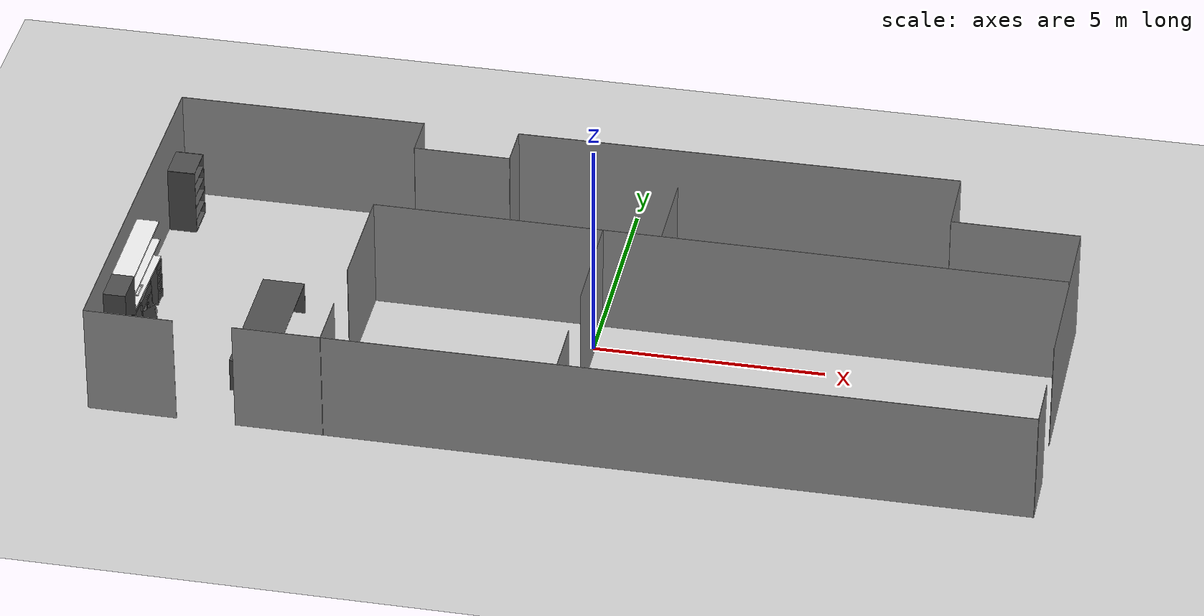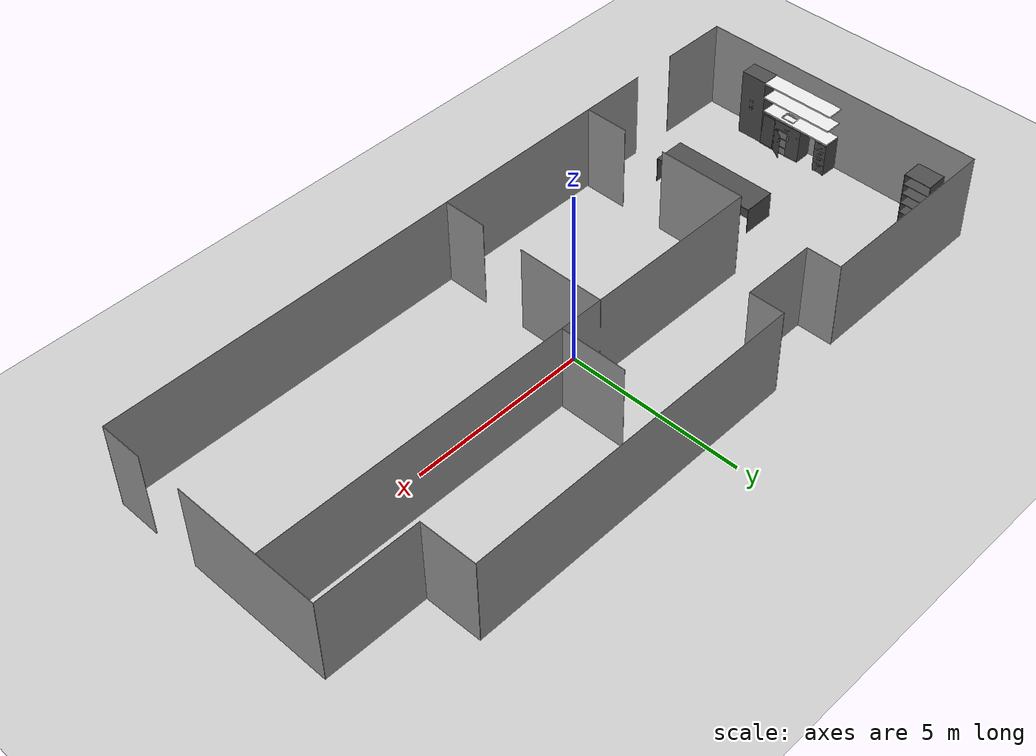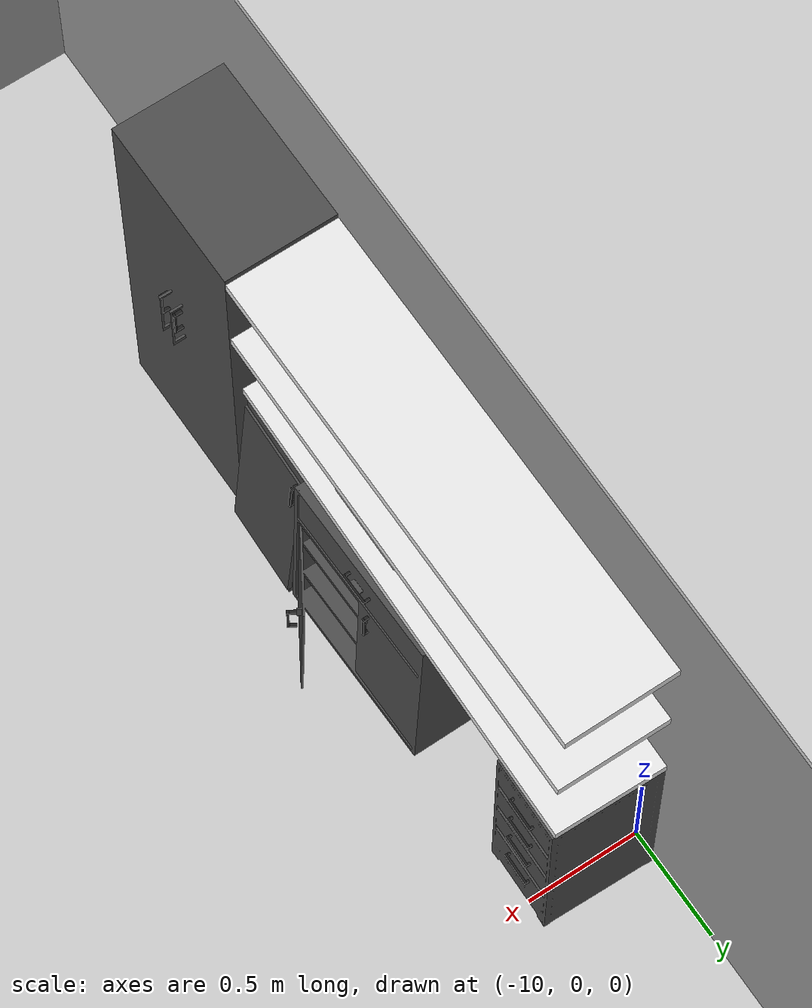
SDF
<sdf version="1.6">
 <world name="default">
  <include><uri>model://ahg_apartment</uri><name>apartment</name></include>
  <include>
   <uri>model://kitchencab</uri>
   <name>kitchencab</name>
   <pose>-9.6182 -0.781398 0.009025 0 -0 1.58311</pose>
  </include>
  <include>
   <uri>model://cabdoor</uri>
   <name>cabdoor</name>
   <pose>-9.583 -1.7733 -0.032279 -0.001454 0.092063 3.10978</pose>
  </include>
  <include>
   <uri>model://drawers</uri>
   <name>drawercab</name>
   <pose>-9.73854 -0.059237 0.01031 0 -0 1.54676</pose>
  </include>
  <include>
   <uri>model://Tall-Cabinet</uri>
   <name>tallcab</name>
   <pose>-9.71502 -2.38166 0.00057 1.57007 -1e-06 -3.14091</pose>
  </include>
  <include>
   <uri>model://shelf</uri>
   <name>shelf0</name>
   <pose>-9.76014 -0.933182 1.02645 0 0 -1.58999</pose>
  </include>
  <include>
   <uri>model://shelf</uri>
   <name>shelf1</name>
   <pose>-9.74464 -0.940107 1.93298 0 0 -1.56952</pose>
  </include>
  <include>
   <uri>model://shelf</uri>
   <name>shelf2</name>
   <pose>-9.74458 -0.944346 1.47391 0 0 -1.57628</pose>
  </include>
  <include><uri>model://sink</uri><name>sink</name><pose>-9.72683 -1.25088 1.08353 0 -0 1.56448</pose></include>
  <include><uri>model://ahg_table</uri><name>table</name><pose>-6.787863 -1.427580 0.762 0 0 0</pose></include>
  <include><uri>model://ahg_bookcase</uri><name>bookcase</name><pose>-9.670289 3.020210 0 0 0 0</pose></include>
  <include><uri>model://sun</uri></include>
  <include><uri>model://ground_plane</uri></include>
  <gravity>0 0 -9.8</gravity>
  <magnetic_field>6e-06 2.3e-05 -4.2e-05</magnetic_field>
  <atmosphere type="adiabatic"/>
  <physics name="default_physics" default="0" type="ode">
   <max_step_size>0.001</max_step_size>
   <real_time_factor>1</real_time_factor>
   <real_time_update_rate>1000</real_time_update_rate>
  </physics>
  <scene><ambient>0.4 0.4 0.4 1</ambient><background>0.7 0.7 0.7 1</background><shadows>1</shadows></scene>
  <spherical_coordinates>
   <surface_model>EARTH_WGS84</surface_model>
   <latitude_deg>0</latitude_deg>
   <longitude_deg>0</longitude_deg>
   <elevation>0</elevation>
   <heading_deg>0</heading_deg>
  </spherical_coordinates>
 </world>
</sdf>

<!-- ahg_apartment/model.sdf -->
<sdf version='1.6'>
  <model name='ahg_apartment'>
    <pose frame=''>-0.014919 0.013898 0 0 -0 0</pose>

    <!-- Wall 11 -->
    <link name='Wall_11_Bottom'>
      <collision name='Wall_11_Bottom_Collision'>
        <geometry>
          <box>
            <size>9.6682 0.01 2.5</size>
          </box>
        </geometry>
        <pose frame=''>0 0 1.25 0 -0 0</pose>
      </collision>
      <visual name='Wall_11_Bottom_Visual'>
        <pose frame=''>0 0 1.25 0 -0 0</pose>
        <geometry>
          <box>
            <size>9.6682 0.01 2.5</size>
          </box>
        </geometry>
        <material>
          <script>
            <uri>file://media/materials/scripts/gazebo.material</uri>
            <name>Gazebo/Grey</name>
          </script>
          <ambient>1 1 1 1</ambient>
        </material>
      </visual>
      <pose frame=''>2.36479 4.14145 0 0 -0 0.003242</pose>
    </link>

    <link name='Wall_11_Top'>
      <collision name='Wall_11_Top_Collision'>
        <geometry>
          <box>
            <size>9.6682 0.01 2.5</size>
          </box>
        </geometry>
        <pose frame=''>0 0 1.25 0 -0 0</pose>
      </collision>
      <visual name='Wall_11_Top_Visual'>
        <pose frame=''>0 0 1.25 0 -0 0</pose>
        <geometry>
          <box>
            <size>9.6682 0.01 2.5</size>
          </box>
        </geometry>
        <material>
          <ambient>15 71 174 1</ambient>
        </material>
      </visual>
      <pose frame=''>2.36479 4.14145 0 0 -0 0.003242</pose>
    </link>

    <!-- Wall 12 -->
    <link name='Wall_12_Bottom'>
      <collision name='Wall_12_Bottom_Collision'>
        <geometry>
          <box>
            <size>1.57865 0.01 2.5</size>
          </box>
        </geometry>
        <pose frame=''>0 0 1.25 0 -0 0</pose>
      </collision>
      <visual name='Wall_12_Bottom_Visual'>
        <pose frame=''>0 0 1.25 0 -0 0</pose>
        <geometry>
          <box>
            <size>1.57865 0.01 2.5</size>
          </box>
        </geometry>
        <material>
          <script>
            <uri>file://media/materials/scripts/gazebo.material</uri>
            <name>Gazebo/Grey</name>
          </script>
          <ambient>1 1 1 1</ambient>
        </material>
      </visual>
      <pose frame=''>7.21714 3.37282 0 0 0 -1.56019</pose>
    </link>

    <link name='Wall_12_Top'>
      <collision name='Wall_12_Top_Collision'>
        <geometry>
          <box>
            <size>1.57865 0.01 2.5</size>
          </box>
        </geometry>
        <pose frame=''>0 0 1.25 0 -0 0</pose>
      </collision>
      <visual name='Wall_12_Top_Visual'>
        <pose frame=''>0 0 1.25 0 -0 0</pose>
        <geometry>
          <box>
            <size>1.57865 0.01 2.5</size>
          </box>
        </geometry>
        <material>
          <ambient>15 71 174 1</ambient>
        </material>
      </visual>
      <pose frame=''>7.21714 3.37282 0 0 0 -1.56019</pose>
    </link>

    <!-- Wall 15 -->
    <link name='Wall_15_Bottom'>
      <collision name='Wall_15_Bottom_Collision'>
        <geometry>
          <box>
            <size>2.78102 0.01 2.5</size>
          </box>
        </geometry>
        <pose frame=''>0 0 1.25 0 -0 0</pose>
      </collision>
      <visual name='Wall_15_Bottom_Visual'>
        <pose frame=''>0 0 1.25 0 -0 0</pose>
        <geometry>
          <box>
            <size>2.78102 0.01 2.5</size>
          </box>
        </geometry>
        <material>
          <script>
            <uri>file://media/materials/scripts/gazebo.material</uri>
            <name>Gazebo/Grey</name>
          </script>
          <ambient>1 1 1 1</ambient>
        </material>
      </visual>
      <pose frame=''>8.61097 2.58077 0 0 0 -0.005604</pose>
    </link>

    <link name='Wall_15_Top'>
      <collision name='Wall_15_Top_Collision'>
        <geometry>
          <box>
            <size>2.78102 0.01 2.5</size>
          </box>
        </geometry>
        <pose frame=''>0 0 1.25 0 -0 0</pose>
      </collision>
      <visual name='Wall_15_Top_Visual'>
        <pose frame=''>0 0 1.25 0 -0 0</pose>
        <geometry>
          <box>
            <size>2.78102 0.01 2.5</size>
          </box>
        </geometry>
        <material>
          <ambient>15 71 174 1</ambient>
        </material>
      </visual>
      <pose frame=''>8.61097 2.58077 0 0 0 -0.005604</pose>
    </link>

    <!-- Wall 16 -->
    <link name='Wall_16_Bottom'>
      <collision name='Wall_16_Bottom_Collision'>
        <geometry>
          <box>
            <size>4.19662 0.01 2.5</size>
          </box>
        </geometry>
        <pose frame=''>0 0 1.25 0 -0 0</pose>
      </collision>
      <visual name='Wall_16_Bottom_Visual'>
        <pose frame=''>0 0 1.25 0 -0 0</pose>
        <geometry>
          <box>
            <size>4.19662 0.01 2.5</size>
          </box>
        </geometry>
        <material>
          <script>
            <uri>file://media/materials/scripts/gazebo.material</uri>
            <name>Gazebo/Grey</name>
          </script>
          <ambient>1 1 1 1</ambient>
        </material>
      </visual>
      <pose frame=''>9.99989 0.479714 0 0 0 -1.57325</pose>
    </link>

    <link name='Wall_16_Top'>
      <collision name='Wall_16_Top_Collision'>
        <geometry>
          <box>
            <size>4.19662 0.01 2.5</size>
          </box>
        </geometry>
        <pose frame=''>0 0 1.25 0 -0 0</pose>
      </collision>
      <visual name='Wall_16_Top_Visual'>
        <pose frame=''>0 0 1.25 0 -0 0</pose>
        <geometry>
          <box>
            <size>4.19662 0.01 2.5</size>
          </box>
        </geometry>
        <material>
          <ambient>15 71 174 1</ambient>
        </material>
      </visual>
      <pose frame=''>9.99989 0.479714 0 0 0 -1.57325</pose>
    </link>

    <!-- Wall 18 -->
    <link name='Wall_18_Bottom'>
      <collision name='Wall_18_Bottom_Collision'>
        <geometry>
          <box>
            <size>1.2318 0.01 2.5</size>
          </box>
        </geometry>
        <pose frame=''>0 0 1.25 0 -0 0</pose>
      </collision>
      <visual name='Wall_18_Bottom_Visual'>
        <pose frame=''>0 0 1.25 0 -0 0</pose>
        <geometry>
          <box>
            <size>1.2318 0.01 2.5</size>
          </box>
        </geometry>
        <material>
          <script>
            <uri>file://media/materials/scripts/gazebo.material</uri>
            <name>Gazebo/Grey</name>
          </script>
          <ambient>1 1 1 1</ambient>
        </material>
      </visual>
      <pose frame=''>10.0193 -3.51742 0 0 0 -1.57439</pose>
    </link>

    <link name='Wall_18_Top'>
      <collision name='Wall_18_Top_Collision'>
        <geometry>
          <box>
            <size>1.2318 0.01 2.5</size>
          </box>
        </geometry>
        <pose frame=''>0 0 1.25 0 -0 0</pose>
      </collision>
      <visual name='Wall_18_Top_Visual'>
        <pose frame=''>0 0 1.25 0 -0 0</pose>
        <geometry>
          <box>
            <size>1.2318 0.01 2.5</size>
          </box>
        </geometry>
        <material>
          <ambient>15 71 174 1</ambient>
        </material>
      </visual>
      <pose frame=''>10.0193 -3.51742 0 0 0 -1.57439</pose>
    </link>

    <!-- Wall 19 -->
    <link name='Wall_19_Bottom'>
      <collision name='Wall_19_Bottom_Collision'>
        <geometry>
          <box>
            <size>16.8681 0.01 2.5</size>
          </box>
        </geometry>
        <pose frame=''>0 0 1.25 0 -0 0</pose>
      </collision>
      <visual name='Wall_19_Bottom_Visual'>
        <pose frame=''>0 0 1.25 0 -0 0</pose>
        <geometry>
          <box>
            <size>16.8681 0.01 2.5</size>
          </box>
        </geometry>
        <material>
          <script>
            <uri>file://media/materials/scripts/gazebo.material</uri>
            <name>Gazebo/Grey</name>
          </script>
          <ambient>1 1 1 1</ambient>
        </material>
      </visual>
      <pose frame=''>1.58828 -4.13952 0 0 0 -3.14015</pose>
    </link>

    <link name='Wall_19_Top'>
      <collision name='Wall_19_Top_Collision'>
        <geometry>
          <box>
            <size>16.8681 0.01 2.5</size>
          </box>
        </geometry>
        <pose frame=''>0 0 1.25 0 -0 0</pose>
      </collision>
      <visual name='Wall_19_Top_Visual'>
        <pose frame=''>0 0 1.25 0 -0 0</pose>
        <geometry>
          <box>
            <size>16.8681 0.01 2.5</size>
          </box>
        </geometry>
        <material>
          <ambient>15 71 174 1</ambient>
        </material>
      </visual>
      <pose frame=''>1.58828 -4.13952 0 0 0 -3.14015</pose>
    </link>

    <!-- Wall 21 -->
    <link name='Wall_21_Bottom'>
      <collision name='Wall_21_Bottom_Collision'>
        <geometry>
          <box>
            <size>1.91841 0.01 2.5</size>
          </box>
        </geometry>
        <pose frame=''>0 0 1.25 0 -0 0</pose>
      </collision>
      <visual name='Wall_21_Bottom_Visual'>
        <pose frame=''>0 0 1.25 0 -0 0</pose>
        <geometry>
          <box>
            <size>1.91841 0.01 2.5</size>
          </box>
        </geometry>
        <material>
          <script>
            <uri>file://media/materials/scripts/gazebo.material</uri>
            <name>Gazebo/Grey</name>
          </script>
          <ambient>1 1 1 1</ambient>
        </material>
      </visual>
      <pose frame=''>-9.06728 -4.14723 0 0 -0 3.13664</pose>
    </link>

    <link name='Wall_21_Top'>
      <collision name='Wall_21_Top_Collision'>
        <geometry>
          <box>
            <size>1.91841 0.01 2.5</size>
          </box>
        </geometry>
        <pose frame=''>0 0 1.25 0 -0 0</pose>
      </collision>
      <visual name='Wall_21_Top_Visual'>
        <pose frame=''>0 0 1.25 0 -0 0</pose>
        <geometry>
          <box>
            <size>1.91841 0.01 2.5</size>
          </box>
        </geometry>
        <material>
          <ambient>15 71 174 1</ambient>
        </material>
      </visual>
      <pose frame=''>-9.06728 -4.14723 0 0 -0 3.13664</pose>
    </link>

    <!-- Wall 22 -->
    <link name='Wall_22_Bottom'>
      <collision name='Wall_22_Bottom_Collision'>
        <geometry>
          <box>
            <size>8.2785 0.01 2.5</size>
          </box>
        </geometry>
        <pose frame=''>0 0 1.25 0 -0 0</pose>
      </collision>
      <visual name='Wall_22_Bottom_Visual'>
        <pose frame=''>0 0 1.25 0 -0 0</pose>
        <geometry>
          <box>
            <size>8.2785 0.01 2.5</size>
          </box>
        </geometry>
        <material>
          <script>
            <uri>file://media/materials/scripts/gazebo.material</uri>
            <name>Gazebo/Grey</name>
          </script>
          <ambient>1 1 1 1</ambient>
        </material>
      </visual>
      <pose frame=''>-10.002 -0.008293 0 0 -0 1.56643</pose>
    </link>

    <link name='Wall_22_Top'>
      <collision name='Wall_22_Top_Collision'>
        <geometry>
          <box>
            <size>8.2785 0.01 2.5</size>
          </box>
        </geometry>
        <pose frame=''>0 0 1.25 0 -0 0</pose>
      </collision>
      <visual name='Wall_22_Top_Visual'>
        <pose frame=''>0 0 1.25 0 -0 0</pose>
        <geometry>
          <box>
            <size>8.2785 0.01 2.5</size>
          </box>
        </geometry>
        <material>
          <ambient>15 71 174 1</ambient>
        </material>
      </visual>
      <pose frame=''>-10.002 -0.008293 0 0 -0 1.56643</pose>
    </link>

    <!-- Wall 34 -->
    <link name='Wall_34_Bottom'>
      <collision name='Wall_34_Bottom_Collision'>
        <geometry>
          <box>
            <size>2.10809 0.01 2.5</size>
          </box>
        </geometry>
        <pose frame=''>0 0 1.25 0 -0 0</pose>
      </collision>
      <visual name='Wall_34_Bottom_Visual'>
        <pose frame=''>0 0 1.25 0 -0 0</pose>
        <geometry>
          <box>
            <size>2.10809 0.01 2.5</size>
          </box>
        </geometry>
        <material>
          <script>
            <uri>file://media/materials/scripts/gazebo.material</uri>
            <name>Gazebo/Grey</name>
          </script>
          <ambient>1 1 1 1</ambient>
        </material>
      </visual>
      <pose frame=''>-3.51618 3.14425 0 0 0 -0.003415</pose>
    </link>

    <link name='Wall_34_Top'>
      <collision name='Wall_34_Top_Collision'>
        <geometry>
          <box>
            <size>2.10809 0.01 2.5</size>
          </box>
        </geometry>
        <pose frame=''>0 0 1.25 0 -0 0</pose>
      </collision>
      <visual name='Wall_34_Top_Visual'>
        <pose frame=''>0 0 1.25 0 -0 0</pose>
        <geometry>
          <box>
            <size>2.10809 0.01 2.5</size>
          </box>
        </geometry>
        <material>
          <ambient>15 71 174 1</ambient>
        </material>
      </visual>
      <pose frame=''>-3.51618 3.14425 0 0 0 -0.003415</pose>
    </link>

    <!-- Wall 4 -->
    <link name='Wall_4_Bottom'>
      <collision name='Wall_4_Bottom_Collision'>
        <geometry>
          <box>
            <size>5.41613 0.01 2.5</size>
          </box>
        </geometry>
        <pose frame=''>0 0 1.25 0 -0 0</pose>
      </collision>
      <visual name='Wall_4_Bottom_Visual'>
        <pose frame=''>0 0 1.25 0 -0 0</pose>
        <geometry>
          <box>
            <size>5.41613 0.01 2.5</size>
          </box>
        </geometry>
        <material>
          <script>
            <uri>file://media/materials/scripts/gazebo.material</uri>
            <name>Gazebo/Grey</name>
          </script>
          <ambient>1 1 1 1</ambient>
        </material>
      </visual>
      <pose frame=''>-7.28234 4.12511 0 0 0 -0.0003</pose>
    </link>

    <link name='Wall_4_Top'>
      <collision name='Wall_4_Top_Collision'>
        <geometry>
          <box>
            <size>5.41613 0.01 2.5</size>
          </box>
        </geometry>
        <pose frame=''>0 0 1.25 0 -0 0</pose>
      </collision>
      <visual name='Wall_4_Top_Visual'>
        <pose frame=''>0 0 1.25 0 -0 0</pose>
        <geometry>
          <box>
            <size>5.41613 0.01 2.5</size>
          </box>
        </geometry>
        <material>
          <ambient>15 71 174 1</ambient>
        </material>
      </visual>
      <pose frame=''>-7.28234 4.12511 0 0 0 -0.0003</pose>
    </link>

    <!-- Wall 41 -->
    <link name='Wall_41_Bottom'>
      <collision name='Wall_41_Bottom_Collision'>
        <geometry>
          <box>
            <size>1.26357 0.01 2.5</size>
          </box>
        </geometry>
        <pose frame=''>0 0 1.25 0 -0 0</pose>
      </collision>
      <visual name='Wall_41_Bottom_Visual'>
        <pose frame=''>0 0 1.25 0 -0 0</pose>
        <geometry>
          <box>
            <size>1.26357 0.01 2.5</size>
          </box>
        </geometry>
        <material>
          <script>
            <uri>file://media/materials/scripts/gazebo.material</uri>
            <name>Gazebo/Grey</name>
          </script>
          <ambient>1 1 1 1</ambient>
        </material>
      </visual>
      <pose frame=''>-4.95628 -3.53036 0 0 -0 1.56863</pose>
    </link>

    <link name='Wall_41_Top'>
      <collision name='Wall_41_Top_Collision'>
        <geometry>
          <box>
            <size>1.26357 0.01 2.5</size>
          </box>
        </geometry>
        <pose frame=''>0 0 1.25 0 -0 0</pose>
      </collision>
      <visual name='Wall_41_Top_Visual'>
        <pose frame=''>0 0 1.25 0 -0 0</pose>
        <geometry>
          <box>
            <size>1.26357 0.01 2.5</size>
          </box>
        </geometry>
        <material>
          <ambient>15 71 174 1</ambient>
        </material>
      </visual>
      <pose frame=''>-4.95628 -3.53036 0 0 -0 1.56863</pose>
    </link>

    <!-- Wall 46 -->
    <link name='Wall_46_Bottom'>
      <collision name='Wall_46_Bottom_Collision'>
        <geometry>
          <box>
            <size>2.51611 0.01 2.5</size>
          </box>
        </geometry>
        <pose frame=''>0 0 1.25 0 -0 0</pose>
      </collision>
      <visual name='Wall_46_Bottom_Visual'>
        <pose frame=''>0 0 1.25 0 -0 0</pose>
        <geometry>
          <box>
            <size>2.51611 0.01 2.5</size>
          </box>
        </geometry>
        <material>
          <script>
            <uri>file://media/materials/scripts/gazebo.material</uri>
            <name>Gazebo/Grey</name>
          </script>
          <ambient>1 1 1 1</ambient>
        </material>
      </visual>
      <pose frame=''>-4.95391 -0.395397 0 0 -0 1.57146</pose>
    </link>

    <link name='Wall_46_Top'>
      <collision name='Wall_46_Top_Collision'>
        <geometry>
          <box>
            <size>2.51611 0.01 2.5</size>
          </box>
        </geometry>
        <pose frame=''>0 0 1.25 0 -0 0</pose>
      </collision>
      <visual name='Wall_46_Top_Visual'>
        <pose frame=''>0 0 1.25 0 -0 0</pose>
        <geometry>
          <box>
            <size>2.51611 0.01 2.5</size>
          </box>
        </geometry>
        <material>
          <ambient>15 71 174 1</ambient>
        </material>
      </visual>
      <pose frame=''>-4.95391 -0.395397 0 0 -0 1.57146</pose>
    </link>

    <!-- Wall 47 -->
    <link name='Wall_47_Bottom'>
      <collision name='Wall_47_Bottom_Collision'>
        <geometry>
          <box>
            <size>14.9335 0.01 2.5</size>
          </box>
        </geometry>
        <pose frame=''>0 0 1.25 0 -0 0</pose>
      </collision>
      <visual name='Wall_47_Bottom_Visual'>
        <pose frame=''>0 0 1.25 0 -0 0</pose>
        <geometry>
          <box>
            <size>14.9335 0.01 2.5</size>
          </box>
        </geometry>
        <material>
          <script>
            <uri>file://media/materials/scripts/gazebo.material</uri>
            <name>Gazebo/Grey</name>
          </script>
          <ambient>1 1 1 1</ambient>
        </material>
      </visual>
      <pose frame=''>2.51347 0.847509 0 0 0 -0.001348</pose>
    </link>

    <link name='Wall_47_Top'>
      <collision name='Wall_47_Top_Collision'>
        <geometry>
          <box>
            <size>14.9335 0.01 2.5</size>
          </box>
        </geometry>
        <pose frame=''>0 0 1.25 0 -0 0</pose>
      </collision>
      <visual name='Wall_47_Top_Visual'>
        <pose frame=''>0 0 1.25 0 -0 0</pose>
        <geometry>
          <box>
            <size>14.9335 0.01 2.5</size>
          </box>
        </geometry>
        <material>
          <ambient>15 71 174 1</ambient>
        </material>
      </visual>
      <pose frame=''>2.51347 0.847509 0 0 0 -0.001348</pose>
    </link>

    <!-- Wall 49 -->
    <link name='Wall_49_Bottom'>
      <collision name='Wall_49_Bottom_Collision'>
        <geometry>
          <box>
            <size>1.244 0.01 2.5</size>
          </box>
        </geometry>
        <pose frame=''>0 0 1.25 0 -0 0</pose>
      </collision>
      <visual name='Wall_49_Bottom_Visual'>
        <pose frame=''>0 0 1.25 0 -0 0</pose>
        <geometry>
          <box>
            <size>1.244 0.01 2.5</size>
          </box>
        </geometry>
        <material>
          <script>
            <uri>file://media/materials/scripts/gazebo.material</uri>
            <name>Gazebo/Grey</name>
          </script>
          <ambient>1 1 1 1</ambient>
        </material>
      </visual>
      <pose frame=''>0.039193 -3.52411 0 0 -0 1.5708</pose>
    </link>

    <link name='Wall_49_Top'>
      <collision name='Wall_49_Top_Collision'>
        <geometry>
          <box>
            <size>1.244 0.01 2.5</size>
          </box>
        </geometry>
        <pose frame=''>0 0 1.25 0 -0 0</pose>
      </collision>
      <visual name='Wall_49_Top_Visual'>
        <pose frame=''>0 0 1.25 0 -0 0</pose>
        <geometry>
          <box>
            <size>1.244 0.01 2.5</size>
          </box>
        </geometry>
        <material>
          <ambient>15 71 174 1</ambient>
        </material>
      </visual>
      <pose frame=''>0.039193 -3.52411 0 0 -0 1.5708</pose>
    </link>

    <!-- Wall 61 -->
    <link name='Wall_61_Bottom'>
      <collision name='Wall_61_Bottom_Collision'>
        <geometry>
          <box>
            <size>1.86489 0.01 2.5</size>
          </box>
        </geometry>
        <pose frame=''>0 0 1.25 0 -0 0</pose>
      </collision>
      <visual name='Wall_61_Bottom_Visual'>
        <pose frame=''>0 0 1.25 0 -0 0</pose>
        <geometry>
          <box>
            <size>1.86489 0.01 2.5</size>
          </box>
        </geometry>
        <material>
          <script>
            <uri>file://media/materials/scripts/gazebo.material</uri>
            <name>Gazebo/Grey</name>
          </script>
          <ambient>1 1 1 1</ambient>
        </material>
      </visual>
      <pose frame=''>1.29442 1.79697 0 0 -0 1.57049</pose>
    </link>

    <link name='Wall_61_Top'>
      <collision name='Wall_61_Top_Collision'>
        <geometry>
          <box>
            <size>1.86489 0.01 2.5</size>
          </box>
        </geometry>
        <pose frame=''>0 0 1.25 0 -0 0</pose>
      </collision>
      <visual name='Wall_61_Top_Visual'>
        <pose frame=''>0 0 1.25 0 -0 0</pose>
        <geometry>
          <box>
            <size>1.86489 0.01 2.5</size>
          </box>
        </geometry>
        <material>
          <ambient>15 71 174 1</ambient>
        </material>
      </visual>
      <pose frame=''>1.29442 1.79697 0 0 -0 1.57049</pose>
    </link>

    <!-- Wall 65 -->
    <link name='Wall_65_Bottom'>
      <collision name='Wall_65_Bottom_Collision'>
        <geometry>
          <box>
            <size>0.998401 0.01 2.5</size>
          </box>
        </geometry>
        <pose frame=''>0 0 1.25 0 -0 0</pose>
      </collision>
      <visual name='Wall_65_Bottom_Visual'>
        <pose frame=''>0 0 1.25 0 -0 0</pose>
        <geometry>
          <box>
            <size>0.998401 0.01 2.5</size>
          </box>
        </geometry>
        <material>
          <script>
            <uri>file://media/materials/scripts/gazebo.material</uri>
            <name>Gazebo/Grey</name>
          </script>
          <ambient>1 1 1 1</ambient>
        </material>
      </visual>
      <pose frame=''>-2.4641 3.63485 0 0 -0 1.57118</pose>
    </link>

    <link name='Wall_65_Top'>
      <collision name='Wall_65_Top_Collision'>
        <geometry>
          <box>
            <size>0.998401 0.01 2.5</size>
          </box>
        </geometry>
        <pose frame=''>0 0 1.25 0 -0 0</pose>
      </collision>
      <visual name='Wall_65_Top_Visual'>
        <pose frame=''>0 0 1.25 0 -0 0</pose>
        <geometry>
          <box>
            <size>0.998401 0.01 2.5</size>
          </box>
        </geometry>
        <material>
          <ambient>15 71 174 1</ambient>
        </material>
      </visual>
      <pose frame=''>-2.4641 3.63485 0 0 -0 1.57118</pose>
    </link>

    <!-- Wall 69 -->
    <link name='Wall_69_Bottom'>
      <collision name='Wall_69_Bottom_Collision'>
        <geometry>
          <box>
            <size>0.993206 0.01 2.5</size>
          </box>
        </geometry>
        <pose frame=''>0 0 1.25 0 -0 0</pose>
      </collision>
      <visual name='Wall_69_Bottom_Visual'>
        <pose frame=''>0 0 1.25 0 -0 0</pose>
        <geometry>
          <box>
            <size>0.993206 0.01 2.5</size>
          </box>
        </geometry>
        <material>
          <script>
            <uri>file://media/materials/scripts/gazebo.material</uri>
            <name>Gazebo/Grey</name>
          </script>
          <ambient>1 1 1 1</ambient>
        </material>
      </visual>
      <pose frame=''>-4.56795 3.63943 0 0 -0 1.57351</pose>
    </link>

    <link name='Wall_69_Top'>
      <collision name='Wall_69_Top_Collision'>
        <geometry>
          <box>
            <size>0.993206 0.01 2.5</size>
          </box>
        </geometry>
        <pose frame=''>0 0 1.25 0 -0 0</pose>
      </collision>
      <visual name='Wall_69_Top_Visual'>
        <pose frame=''>0 0 1.25 0 -0 0</pose>
        <geometry>
          <box>
            <size>0.993206 0.01 2.5</size>
          </box>
        </geometry>
        <material>
          <ambient>15 71 174 1</ambient>
        </material>
      </visual>
      <pose frame=''>-4.56795 3.63943 0 0 -0 1.57351</pose>
    </link>

    <!-- Wall 71 -->
    <link name='Wall_71_Bottom'>
      <collision name='Wall_71_Bottom_Collision'>
        <geometry>
          <box>
            <size>2.51204 0.01 2.5</size>
          </box>
        </geometry>
        <pose frame=''>0 0 1.25 0 -0 0</pose>
      </collision>
      <visual name='Wall_71_Bottom_Visual'>
        <pose frame=''>0 0 1.25 0 -0 0</pose>
        <geometry>
          <box>
            <size>2.51204 0.01 2.5</size>
          </box>
        </geometry>
        <material>
          <script>
            <uri>file://media/materials/scripts/gazebo.material</uri>
            <name>Gazebo/Grey</name>
          </script>
          <ambient>1 1 1 1</ambient>
        </material>
      </visual>
      <pose frame=''>0.034149 -0.396524 0 0 0 -1.56821</pose>
    </link>

    <link name='Wall_71_Top'>
      <collision name='Wall_71_Top_Collision'>
        <geometry>
          <box>
            <size>2.51204 0.01 2.5</size>
          </box>
        </geometry>
        <pose frame=''>0 0 1.25 0 -0 0</pose>
      </collision>
      <visual name='Wall_71_Top_Visual'>
        <pose frame=''>0 0 1.25 0 -0 0</pose>
        <geometry>
          <box>
            <size>2.51204 0.01 2.5</size>
          </box>
        </geometry>
        <material>
          <ambient>15 71 174 1</ambient>
        </material>
      </visual>
      <pose frame=''>0.034149 -0.396524 0 0 0 -1.56821</pose>
    </link>

    <static>1</static>
  </model>
</sdf>

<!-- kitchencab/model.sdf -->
<sdf version='1.6'>
<model name='kitchencab'>
      <link name='link_1'>
        <pose frame=''>5e-06 0 -0 1.70225 0.001141 0.005671</pose>
        <visual name='visual'>
          <pose frame=''>0 0 0 -0.165796 -0 0</pose>
          <geometry>
            <mesh>
              <uri>model://kitchencab/meshes/kitchencab.dae</uri>
              <scale>0.5 0.5 0.5</scale>
            </mesh>
          </geometry>
          <material>
            <lighting>1</lighting>
            <script>
              <name>Gazebo/DarkGrey</name>
              <uri>file://media/materials/scripts/gazebo.material</uri>
            </script>
            <shader type='pixel'/>
	    <emissive>0.05 0.05 0.05 1</emissive>
          </material>
          <transparency>0</transparency>
          <cast_shadows>1</cast_shadows>
        </visual>
        <collision name='collision'>
          <laser_retro>0</laser_retro>
          <max_contacts>10</max_contacts>
          <pose frame=''>0 0 0 -0.165796 -0 0</pose>
          <geometry>
            <mesh>
              <uri>model://kitchencab/meshes/kitchencab.dae</uri>
              <scale>0.5 0.5 0.5</scale>
            </mesh>
          </geometry>
        </collision>
      </link>
      <static>1</static>
      <allow_auto_disable>1</allow_auto_disable>
      <pose frame=''>3.86158 0.104805 0.059126 0 -0 0</pose>
      <include>
	<name>DoorHandle1</name>
	<uri>model://DoorHandle</uri>
	<pose>-0.37 -0.13 0.85 -1.57 0 -1.57</pose>
      </include>
      <joint name="handle_top_joint" type="fixed">
	<child>DoorHandle1::link_2</child>
	<parent>link_1</parent>
      </joint>
     <include>
	<name>DoorHandle2</name>
	<uri>model://DoorHandle</uri>
	<pose>-0.31 -0.13 0.6 0 0 -1.57</pose>
      </include>
      <joint name="handle_middle_joint" type="fixed">
	<child>DoorHandle2::link_2</child>
	<parent>link_1</parent>
      </joint>
     <include>
	<name>DoorHandle3</name>
	<uri>model://DoorHandle</uri>
	<pose>-0.49 -0.35 0.61 0 0 -2.14</pose>
      </include>
      <joint name="handle_middle_joint" type="fixed">
	<child>DoorHandle3::link_2</child>
	<parent>link_1</parent>
      </joint>
    </model>
</sdf>

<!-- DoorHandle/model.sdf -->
<sdf version='1.6'>
  <model name='DoorHandle'>
    <link name='link_2'>
      <pose frame=''>0.013333 0 -0 0 -0 0</pose>
      <visual name='visual'>
        <pose frame=''>0 0 0 0 -0 0</pose>
        <geometry>
          <box>
            <size>0.01 0.015 0.14</size>
          </box>
        </geometry>
        <material>
          <lighting>1</lighting>
          <script>
            <name>Gazebo/Black</name>
            <uri>file://media/materials/scripts/gazebo.material</uri>
          </script>
          <shader type='pixel'>
            <normal_map>__default__</normal_map>
          </shader>
	  <ambient>0 0 0 1</ambient>
	  <specular>0 0 0 1</specular>
	  <diffuse>0 0 0 1</diffuse>
	  <emissive>0 0 0 1</emissive>
        </material>
        <transparency>0</transparency>
        <cast_shadows>1</cast_shadows>
      </visual>
      <collision name='collision'>
        <laser_retro>0</laser_retro>
        <max_contacts>10</max_contacts>
        <pose frame=''>0 0 0 0 -0 0</pose>
        <geometry>
          <box>
            <size>0.01 0.015 0.14</size>
          </box>
        </geometry>
      </collision>
    </link>
    <link name='link_4'>
      <pose frame=''>-0.006667 0 -0.065 0 -0 0</pose>
      <visual name='visual'>
        <pose frame=''>0 0 0 0 -0 0</pose>
        <geometry>
          <box>
            <size>0.03 0.015 0.01</size>
          </box>
        </geometry>
        <material>
          <lighting>1</lighting>
          <script>
            <name>Gazebo/Black</name>
            <uri>file://media/materials/scripts/gazebo.material</uri>
          </script>
          <shader type='pixel'>
            <normal_map>__default__</normal_map>
          </shader>
	  <ambient>0 0 0 1</ambient>
	  <specular>0 0 0 1</specular>
	  <diffuse>0 0 0 1</diffuse>
	  <emissive>0 0 0 1</emissive>
        </material>
        <transparency>0</transparency>
        <cast_shadows>1</cast_shadows>
      </visual>
      <collision name='collision'>
        <laser_retro>0</laser_retro>
        <max_contacts>10</max_contacts>
        <pose frame=''>0 0 0 0 -0 0</pose>
        <geometry>
          <box>
            <size>0.03 0.015 0.01</size>
          </box>
        </geometry>
      </collision>
    </link>
    <link name='link_5'>
      <pose frame=''>-0.006667 0 0.065001 0 -0 0</pose>
      <visual name='visual'>
        <pose frame=''>0 0 0 0 -0 0</pose>
        <geometry>
          <box>
            <size>0.03 0.015 0.01</size>
          </box>
        </geometry>
        <material>
          <lighting>1</lighting>
          <script>
            <name>Gazebo/Black</name>
            <uri>file://media/materials/scripts/gazebo.material</uri>
          </script>
	  <ambient>0 0 0 1</ambient>
	  <specular>0 0 0 1</specular>
	  <diffuse>0 0 0 1</diffuse>
	  <emissive>0 0 0 1</emissive>
          <shader type='pixel'>
            <normal_map>__default__</normal_map>
          </shader>
        </material>
        <transparency>0</transparency>
        <cast_shadows>1</cast_shadows>
      </visual>
      <collision name='collision'>
        <laser_retro>0</laser_retro>
        <max_contacts>10</max_contacts>
        <pose frame=''>0 0 0 0 -0 0</pose>
        <geometry>
          <box>
            <size>0.03 0.015 0.01</size>
          </box>
        </geometry>
      </collision>
    </link>
    <joint name='link_2_JOINT_2' type='fixed'>
      <parent>link_2</parent>
      <child>link_4</child>
      <pose frame=''>0 0 0 0 -0 0</pose>
    </joint>
    <joint name='link_5_JOINT_1' type='fixed'>
      <parent>link_5</parent>
      <child>link_2</child>
      <pose frame=''>0 0 0 0 -0 0</pose>
    </joint>
    <static>1</static>
    <allow_auto_disable>1</allow_auto_disable>
  </model>
</sdf>

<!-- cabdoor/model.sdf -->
<sdf version='1.6'>
    <model name='cabdoor'>
      <link name='dummy_link'>
        <pose frame=''>0 0 0 0 -0 0</pose>
        <collision name='dummy_link_collision'>
          <pose frame=''>0 0 0 0 -0 0</pose>
          <geometry>
            <box>
              <size>0 0 0</size>
            </box>
          </geometry>
          <max_contacts>10</max_contacts>
        </collision>
        <collision name='dummy_link_fixed_joint_lump__cabinet_structure_collision_1'>
          <pose frame=''>0 0 0.53 0 -0 0</pose>
          <geometry>
            <box>
              <size>0.28 0.4 0.97</size>
            </box>
          </geometry>
          <max_contacts>10</max_contacts>
        </collision>
        <collision name='dummy_link_fixed_joint_lump__cabinet_door_collision_2'>
          <pose frame=''>-0.14 0 0.52 0 -0 0</pose>
          <geometry>
            <box>
              <size>0.02 0.4 0.89</size>
            </box>
          </geometry>
          <max_contacts>10</max_contacts>
        </collision>
        <collision name='dummy_link_fixed_joint_lump__knob1_link_collision_3'>
          <pose frame=''>-0.155 -0.1825 0.95 0 -0 0</pose>
          <geometry>
            <box>
              <size>0.03 0.015 0.01</size>
            </box>
          </geometry>
          <max_contacts>10</max_contacts>
        </collision>
        <collision name='dummy_link_fixed_joint_lump__knob3_link_collision_4'>
          <pose frame=''>-0.175 -0.1825 0.88 0 -0 0</pose>
          <geometry>
            <box>
              <size>0.01 0.015 0.14</size>
            </box>
          </geometry>
          <max_contacts>10</max_contacts>
        </collision>
        <collision name='dummy_link_fixed_joint_lump__knob2_link_collision_5'>
          <pose frame=''>-0.155 -0.1825 0.82 0 -0 0</pose>
          <geometry>
            <box>
              <size>0.03 0.015 0.01</size>
            </box>
          </geometry>
          <max_contacts>10</max_contacts>
        </collision>
        <visual name='dummy_link_visual'>
          <pose frame=''>0 0 0 0 -0 0</pose>
          <geometry>
            <box>
              <size>0 0 0</size>
            </box>
          </geometry>
        </visual>
        <visual name='dummy_link_fixed_joint_lump__cabinet_structure_visual_1'>
          <pose frame=''>0 0 0.53 0 -0 0</pose>
          <geometry>
            <box>
              <size>0.28 0.4 0.97</size>
            </box>
          </geometry>
          <material>
            <script>
              <name>Gazebo/DarkGrey</name>
              <uri>file://media/materials/scripts/gazebo.material</uri>
            </script>
            <emissive>0.05 0.05 0.05 1</emissive>
          </material>
        </visual>
        <visual name='dummy_link_fixed_joint_lump__cabinet_door_visual_2'>
          <pose frame=''>-0.14 0 0.52 0 -0 0</pose>
          <geometry>
            <box>
              <size>0.02 0.4 0.89</size>
            </box>
          </geometry>
          <material>
            <script>
              <name>Gazebo/DarkGrey</name>
              <uri>file://media/materials/scripts/gazebo.material</uri>
            </script>
            <emissive>0.05 0.05 0.05 1</emissive>
          </material>
        </visual>
        <visual name='dummy_link_fixed_joint_lump__knob1_link_visual_3'>
          <pose frame=''>-0.155 -0.1825 0.95 0 -0 0</pose>
          <geometry>
            <box>
              <size>0.03 0.015 0.01</size>
            </box>
          </geometry>
          <material>
            <script>
              <name>Gazebo/Black</name>
              <uri>file://media/materials/scripts/gazebo.material</uri>
            </script>
          </material>
        </visual>
        <visual name='dummy_link_fixed_joint_lump__knob3_link_visual_4'>
          <pose frame=''>-0.175 -0.1825 0.88 0 -0 0</pose>
          <geometry>
            <box>
              <size>0.01 0.015 0.14</size>
            </box>
          </geometry>
          <material>
            <script>
              <name>Gazebo/Black</name>
              <uri>file://media/materials/scripts/gazebo.material</uri>
            </script>
          </material>
        </visual>
        <visual name='dummy_link_fixed_joint_lump__knob2_link_visual_5'>
          <pose frame=''>-0.155 -0.1825 0.82 0 -0 0</pose>
          <geometry>
            <box>
              <size>0.03 0.015 0.01</size>
            </box>
          </geometry>
          <material>
            <script>
              <name>Gazebo/Black</name>
              <uri>file://media/materials/scripts/gazebo.material</uri>
            </script>
          </material>
        </visual>
        <self_collide>0</self_collide>
        <enable_wind>0</enable_wind>
        <kinematic>0</kinematic>
      </link>
      <static>1</static>
      <allow_auto_disable>1</allow_auto_disable>
      <pose frame=''>0 0 1 0 -0 0</pose>
    </model>
</sdf>

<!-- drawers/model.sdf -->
<sdf version='1.6'>
  <model name='drawers'>
    <link name='link_0'>
      <pose frame=''>4e-06 5e-06 0 1.57 0 0</pose>
      <visual name='visual'>
        <pose frame=''>0 0 0 0 -0 0</pose>
        <geometry>
          <mesh>
            <uri>model://drawers/meshes/drawers.dae</uri>
            <scale>0.4 0.925 0.75</scale>
          </mesh>
        </geometry>
        <material>
          <lighting>1</lighting>
          <script>
            <name>Gazebo/DarkGrey</name>
            <uri>file://media/materials/scripts/gazebo.material</uri>
          </script>
          <emissive>0.06 0.06 0.06 1</emissive>
          <shader type='pixel'/>
        </material>
        <transparency>0</transparency>
        <cast_shadows>1</cast_shadows>
      </visual>
      <collision name='collision'>
        <laser_retro>0</laser_retro>
        <max_contacts>10</max_contacts>
        <pose frame=''>0 0 0 0 -0 0</pose>
        <geometry>
          <mesh>
            <uri>model://drawers/meshes/drawers.dae</uri>
            <scale>0.4 0.925 0.75</scale>
          </mesh>
        </geometry>
      </collision>
    </link>
    <static>1</static>
    <allow_auto_disable>1</allow_auto_disable>
    <include>
      <name>DoorHandle1</name>
      <uri>model://DoorHandle</uri>
      <pose>0 -0.25 0.85 -1.57 0 -1.57</pose>
    </include>
    <joint name="handle_top_joint" type="fixed">
      <child>DoorHandle1::link_2</child>
      <parent>link_1</parent>
    </joint>
    <include>
      <name>DoorHandle2</name>
      <uri>model://DoorHandle</uri>
      <pose>0 -0.25 0.65 -1.57 0 -1.57</pose>
    </include>
    <joint name="handle_top_joint" type="fixed">
      <child>DoorHandle2::link_2</child>
      <parent>link_1</parent>
    </joint>
    <include>
      <name>DoorHandle3</name>
      <uri>model://DoorHandle</uri>
      <pose>0 -0.25 0.45 -1.57 0 -1.57</pose>
    </include>
    <joint name="handle_top_joint" type="fixed">
      <child>DoorHandle3::link_2</child>
      <parent>link_1</parent>
    </joint>
    <include>
      <name>DoorHandle4</name>
      <uri>model://DoorHandle</uri>
      <pose>0 -0.25 0.25 -1.57 0 -1.57</pose>
    </include>
    <joint name="handle_top_joint" type="fixed">
      <child>DoorHandle4::link_2</child>
      <parent>link_1</parent>
    </joint>
  </model>
</sdf>

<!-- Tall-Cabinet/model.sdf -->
<sdf version='1.6'>
  <model name='Tall-Cabinet'>
    <link name='link_0'>
      <visual name='visual'>
        <pose frame=''>0 0 0 0 -0 0</pose>
        <geometry>
          <mesh>
            <uri>model://Tall-Cabinet/meshes/3d-model.obj</uri>
            <scale>0.0243 0.025 0.0265</scale>
          </mesh>
        </geometry>
        <material>
          <lighting>1</lighting>
          <script>
	    <name>Gazebo/DarkGrey</name>
            <uri>file://media/materials/scripts/gazebo.material</uri>
          </script>
	  <emissive>0.05 0.05 0.05 1</emissive>
        </material>
        <transparency>0</transparency>
        <cast_shadows>1</cast_shadows>
      </visual>
      <collision name='collision'>
        <laser_retro>0</laser_retro>
        <max_contacts>10</max_contacts>
        <pose frame=''>0 0 0 0 -0 0</pose>
        <geometry>
          <mesh>
            <uri>>model://Tall-Cabinet/meshes/3d-model.obj</uri>
            <scale>0.0243 0.025 0.0265</scale>
          </mesh>
        </geometry>
      </collision>
    </link>
    <static>1</static>
    <allow_auto_disable>1</allow_auto_disable>
    <include>
	<name>DoorHandle1</name>
	<uri>model://DoorHandle</uri>
	<size>1 1 1</size>
	<pose>-0.24 1.1 0.034 1.57 0 3.14</pose>
      </include>
      <joint name="handle_top_joint" type="fixed">
	<child>DoorHandle1::link_2</child>
	<parent>link_1</parent>
      </joint>
     <include>
	<name>DoorHandle2</name>
	<uri>model://DoorHandle</uri>
	<pose>-0.24 1.1 -0.061 1.57 0 3.14</pose>
      </include>
      <joint name="handle_middle_joint" type="fixed">
	<child>DoorHandle2::link_2</child>
	<parent>link_1</parent>
      </joint>
  </model>
</sdf>

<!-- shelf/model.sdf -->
<sdf version='1.6'>
  <model name='Shelf'>
      <link name='link_0'>
        <pose frame=''>0 -0 0 0 -0 0</pose>
        <gravity>1</gravity>
        <self_collide>0</self_collide>
        <kinematic>0</kinematic>
        <enable_wind>0</enable_wind>
        <visual name='visual'>
          <pose frame=''>0 0 0 0 -0 0</pose>
          <geometry>
            <box>
              <size>2.1209 0.487256 0.044201</size>
            </box>
          </geometry>
          <material>
            <lighting>1</lighting>
            <script>
              <uri>file://media/materials/scripts/gazebo.material</uri>
              <name>Gazebo/White</name>
            </script>
            <shader type='pixel'>
              <normal_map>__default__</normal_map>
            </shader>
            <ambient>1 1 1 1</ambient>
            <diffuse>1 1 1 1</diffuse>
            <specular>1 1 1 1</specular>
            <emissive>0 0 0 1</emissive>
          </material>
          <transparency>0</transparency>
          <cast_shadows>1</cast_shadows>
        </visual>
        <collision name='collision'>
          <laser_retro>0</laser_retro>
          <max_contacts>10</max_contacts>
          <pose frame=''>0 0 0 0 -0 0</pose>
          <geometry>
            <box>
              <size>2.1209 0.487256 0.044202</size>
            </box>
          </geometry>
        </collision>
      </link>
      <static>1</static>
      <allow_auto_disable>1</allow_auto_disable>
      <pose frame=''>3.02635 3.83455 0.774433 0 -0 0</pose>
    </model>
</sdf>

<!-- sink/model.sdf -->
<sdf version='1.6'>
  <model name='sink'>
    <link name='link_1'>
      <visual name='visual'>
        <pose frame=''>0 0 0 0 -0 0</pose>
        <geometry>
          <mesh>
            <uri>model://sink/meshes/sink.dae</uri>
            <scale>0.5 0.5 0.5</scale>
          </mesh>
        </geometry>
 	<material>
	  <emissive>0.3 0.3 0.3 0.3</emissive>
	</material>
      <transparency>0</transparency>
      </visual>
      <collision name='collision'>
        <pose frame=''>0 0 0 0 -0 0</pose>
        <geometry>
          <mesh>
            <uri>model://sink/meshes/sink.dae</uri>
            <scale>0.5 0.5 0.5</scale>
          </mesh>
        </geometry>
      </collision>
    </link>
    <static>1</static>
    <allow_auto_disable>1</allow_auto_disable>
  </model>
</sdf>

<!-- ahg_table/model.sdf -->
<sdf version='1.6'>
  <model name='ahg_table'>
    <static>1</static>
    <link name='link'>
      <pose frame=''>0 0 0 0 -0 0</pose>
      <gravity>1</gravity>
      <visual name='visual'>
        <pose frame=''>0 0 0 0 -0 0</pose>
        <geometry>
          <box>
            <size>0.9144 3.048 0.0125</size>
          </box>
        </geometry>
        <material>
          <lighting>1</lighting>
            <script>
              <name>Gazebo/DarkGrey</name>
              <uri>file://media/materials/scripts/gazebo.material</uri>
            </script>
            <shader type='pixel'/>
	    <emissive>0.05 0.05 0.05 1</emissive>
        </material>
        <transparency>0</transparency>
        <cast_shadows>1</cast_shadows>
      </visual>

      <visual name='right_leg_visual'>
        <pose frame=''>0 1.524 -0.381 0 -0 0</pose>
        <geometry>
          <box>
            <size>0.9144 0.0125 0.762</size>
          </box>
        </geometry>
        <material>
          <lighting>1</lighting>
             <script>
              <name>Gazebo/DarkGrey</name>
              <uri>file://media/materials/scripts/gazebo.material</uri>
            </script>
            <shader type='pixel'/>
	    <emissive>0.05 0.05 0.05 1</emissive>
        </material>
        <transparency>0</transparency>
        <cast_shadows>1</cast_shadows>
      </visual>

      <visual name='left_leg_visual'>
        <pose frame=''>0 -1.524 -0.381 0 -0 0</pose>
        <geometry>
          <box>
            <size>0.9144 0.0125 0.762</size>
          </box>
        </geometry>
        <material>
          <lighting>1</lighting>
            <script>
              <name>Gazebo/DarkGrey</name>
              <uri>file://media/materials/scripts/gazebo.material</uri>
            </script>
            <shader type='pixel'/>
	    <emissive>0.05 0.05 0.05 1</emissive>
        </material>
        <transparency>0</transparency>
        <cast_shadows>1</cast_shadows>
      </visual>

      <visual name='middle_visual'>
        <pose frame=''>0 0 -0.37475 0 -0 0</pose>
        <geometry>
          <box>
            <size>0.0125 3.023 0.7495</size>
          </box>
        </geometry>
        <material>
          <lighting>1</lighting>
            <script>
              <name>Gazebo/DarkGrey</name>
              <uri>file://media/materials/scripts/gazebo.material</uri>
            </script>
            <shader type='pixel'/>
	    <emissive>0.05 0.05 0.05 1</emissive>
        </material>
        <transparency>0</transparency>
        <cast_shadows>1</cast_shadows>
      </visual>

      <collision name='right_leg'>
        <laser_retro>0</laser_retro>
        <max_contacts>10</max_contacts>
        <pose frame=''>0 1.524 -0.381 0 -0 0</pose>
        <geometry>
          <box>
            <size>0.9144 0.0125 0.762</size>
          </box>
        </geometry>
      </collision>

      <collision name='left_leg'>
        <laser_retro>0</laser_retro>
        <max_contacts>10</max_contacts>
        <pose frame=''>0 -1.524 -0.381 0 -0 0</pose>
        <geometry>
          <box>
            <size>0.9144 0.0125 0.762</size>
          </box>
        </geometry>
      </collision>

      <collision name='middle'>
        <laser_retro>0</laser_retro>
        <max_contacts>10</max_contacts>
        <pose frame=''>0 0 -0.37475 0 -0 0</pose>
        <geometry>
          <box>
            <size>0.0125 3.023 0.7495</size>
          </box>
        </geometry>
      </collision>
    </link>
    <allow_auto_disable>1</allow_auto_disable>
  </model>
</sdf>

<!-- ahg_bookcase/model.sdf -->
<sdf version='1.6'>
  <model name='ahg_bookcase'>
    <static>1</static>
    <link name='link'>
      <pose frame=''>-0 0 0.009525 0 -0 0</pose>
      <gravity>1</gravity>

      <visual name='bottom_shelf_visual'>
        <pose frame=''>0 0 0.009525 0 -0 0</pose>
        <geometry>
          <box>
            <size>0.6096 0.762 0.0381</size>
          </box>
        </geometry>
        <material>
          <lighting>1</lighting>
            <script>
              <name>Gazebo/DarkGrey</name>
              <uri>file://media/materials/scripts/gazebo.material</uri>
            </script>
            <shader type='pixel'/>
	    <emissive>0.05 0.05 0.05 1</emissive>
        </material>
        <transparency>0</transparency>
        <cast_shadows>1</cast_shadows>
      </visual>

      <visual name='shelf_2_visual'>
        <pose frame=''>0 0 0.3048 0 -0 0</pose>
        <geometry>
          <box>
            <size>0.6096 0.762 0.0125</size>
          </box>
        </geometry>
        <material>
          <lighting>1</lighting>
            <script>
              <name>Gazebo/DarkGrey</name>
              <uri>file://media/materials/scripts/gazebo.material</uri>
            </script>
            <shader type='pixel'/>
	    <emissive>0.05 0.05 0.05 1</emissive>
        </material>
        <transparency>0</transparency>
        <cast_shadows>1</cast_shadows>
      </visual>

      <visual name='shelf_4_visual'>
        <pose frame=''>0 0 0.9144 0 -0 0</pose>
        <geometry>
          <box>
            <size>0.6096 0.762 0.0125</size>
          </box>
        </geometry>
        <material>
          <lighting>1</lighting>
            <script>
              <name>Gazebo/DarkGrey</name>
              <uri>file://media/materials/scripts/gazebo.material</uri>
            </script>
            <shader type='pixel'/>
	    <emissive>0.05 0.05 0.05 1</emissive>
        </material>
        <transparency>0</transparency>
        <cast_shadows>1</cast_shadows>
      </visual>

      <visual name='shelf_5_visual'>
        <pose frame=''>0 0 1.2192 0 -0 0</pose>
        <geometry>
          <box>
            <size>0.6096 0.762 0.0125</size>
          </box>
        </geometry>
        <material>
          <lighting>1</lighting>
            <script>
              <name>Gazebo/DarkGrey</name>
              <uri>file://media/materials/scripts/gazebo.material</uri>
            </script>
            <shader type='pixel'/>
	    <emissive>0.05 0.05 0.05 1</emissive>
        </material>
        <transparency>0</transparency>
        <cast_shadows>1</cast_shadows>
      </visual>

      <visual name='case_top_visual'>
        <pose frame=''>0 0 1.524 0 -0 0</pose>
        <geometry>
          <box>
            <size>0.6096 0.762 0.0125</size>
          </box>
        </geometry>
        <material>
          <lighting>1</lighting>
            <script>
              <name>Gazebo/DarkGrey</name>
              <uri>file://media/materials/scripts/gazebo.material</uri>
            </script>
            <shader type='pixel'/>
	    <emissive>0.05 0.05 0.05 1</emissive>
        </material>
        <transparency>0</transparency>
        <cast_shadows>1</cast_shadows>
      </visual>

      <visual name='case_left_visual'>
        <pose frame=''>0 -0.38725 0.76007 0 -0 0</pose>
        <geometry>
          <box>
            <size>0.6096 0.0125 1.53978</size>
          </box>
        </geometry>
        <material>
          <lighting>1</lighting>
            <script>
              <name>Gazebo/DarkGrey</name>
              <uri>file://media/materials/scripts/gazebo.material</uri>
            </script>
            <shader type='pixel'/>
	    <emissive>0.05 0.05 0.05 1</emissive>
        </material>
        <transparency>0</transparency>
        <cast_shadows>1</cast_shadows>
      </visual>

      <visual name='case_back_visual'>
        <pose frame=''> -0.29855 0 0.75575 0 -0 0</pose>
        <geometry>
          <box>
            <size>0.0125 0.7745 1.524</size>
          </box>
        </geometry>
        <material>
          <lighting>1</lighting>
            <script>
              <name>Gazebo/DarkGrey</name>
              <uri>file://media/materials/scripts/gazebo.material</uri>
            </script>
            <shader type='pixel'/>
	    <emissive>0.05 0.05 0.05 1</emissive>
        </material>
        <transparency>0</transparency>
        <cast_shadows>1</cast_shadows>
      </visual>

      <visual name='case_right_visual'>
        <pose frame=''>0 0.38725 0.76007 0 -0 0</pose>
        <geometry>
          <box>
            <size>0.6096 0.0125 1.53978</size>
          </box>
        </geometry>
        <material>
          <lighting>1</lighting>
            <script>
              <name>Gazebo/DarkGrey</name>
              <uri>file://media/materials/scripts/gazebo.material</uri>
            </script>
            <shader type='pixel'/>
	    <emissive>0.05 0.05 0.05 1</emissive>
        </material>
        <transparency>0</transparency>
        <cast_shadows>1</cast_shadows>
      </visual>

      <visual name='shelf_3_visual'>
        <pose frame=''>0 0 0.6096 0 -0 0</pose>
        <geometry>
          <box>
            <size>0.6096 0.762 0.0125</size>
          </box>
        </geometry>
        <material>
          <lighting>1</lighting>
            <script>
              <name>Gazebo/DarkGrey</name>
              <uri>file://media/materials/scripts/gazebo.material</uri>
            </script>
            <shader type='pixel'/>
	    <emissive>0.05 0.05 0.05 1</emissive>
        </material>
        <transparency>0</transparency>
        <cast_shadows>1</cast_shadows>
      </visual>

      <collision name='shelf_5'>
        <pose frame=''>0 0 1.2192 0 -0 0</pose>
        <geometry>
          <box>
            <size>0.6096 0.762 0.0125</size>
          </box>
        </geometry>
      </collision>

      <collision name='case_back'>
        <pose frame=''>-0.29855 0 0.75575 0 -0 0</pose>
        <geometry>
          <box>
            <size>0.0125 0.7745 1.524</size>
          </box>
        </geometry>
      </collision>

      <collision name='case_top'>
        <pose frame=''>0 0 1.524 0 -0 0</pose>
        <geometry>
          <box>
            <size>0.6096 0.762 0.0125</size>
          </box>
        </geometry>
      </collision>

      <collision name='case_left'>
        <pose frame=''>0 -0.38725 0.76007 0 -0 0</pose>
        <geometry>
          <box>
            <size>0.6096 0.0125 1.53978</size>
          </box>
        </geometry>
      </collision>

      <collision name='shelf_3'>
        <pose frame=''>0 0 0.6096 0 -0 0</pose>
        <geometry>
          <box>
            <size>0.6096 0.762 0.0125</size>
          </box>
        </geometry>
      </collision>

      <collision name='shelf_4'>
        <pose frame=''>0 0 0.9144 0 -0 0</pose>
        <geometry>
          <box>
            <size>0.6096 0.762 0.0125</size>
          </box>
        </geometry>
      </collision>

      <collision name='shelf_2'>
        <pose frame=''>0 0 0.3048 0 -0 0</pose>
        <geometry>
          <box>
            <size>0.6096 0.762 0.0125</size>
          </box>
        </geometry>
      </collision>

      <collision name='case_right'>
        <pose frame=''>0 0.38725 0.76007 0 -0 0</pose>
        <geometry>
          <box>
            <size>0.6096 0.0125 1.53978</size>
          </box>
        </geometry>
      </collision>

    </link>
    <allow_auto_disable>1</allow_auto_disable>
  </model>
</sdf>
